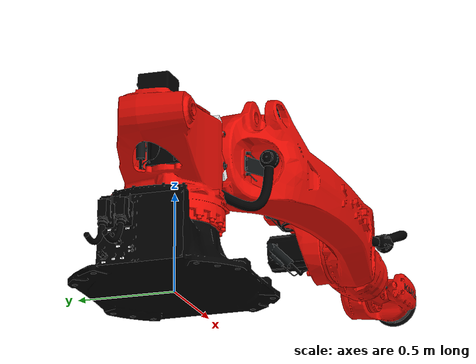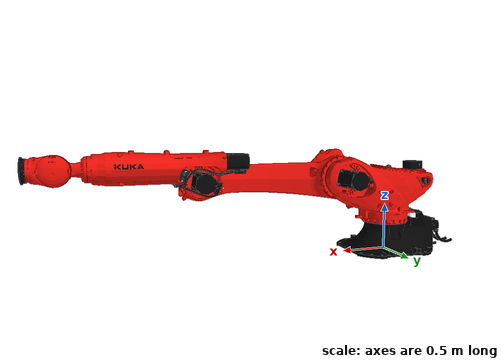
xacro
<?xml version="1.0" encoding="UTF-8"?>
<robot xmlns:xacro="http://www.ros.org/wiki/xacro" name="kr340_r3400_2">
  <!-- Import urdf files  -->
  <xacro:include filename="$(find kuka_fortec_support)/urdf/kr340_r3400_2_macro.xacro"/>
  <xacro:include filename="$(find kuka_fortec_support)/urdf/kr_fortec_ros2_control_macro.xacro"/>
  <!-- Basic arguments  -->
  <xacro:arg name="prefix" default=""/>
  <xacro:arg name="x" default="0"/>
  <xacro:arg name="y" default="0"/>
  <xacro:arg name="z" default="0"/>
  <xacro:arg name="roll" default="0"/>
  <xacro:arg name="pitch" default="0"/>
  <xacro:arg name="yaw" default="0"/>
  <!-- kroshu-specific arguments -->
  <xacro:arg name="driver_version" default="rsi_only"/>
  <xacro:arg name="mode" default="hardware"/>
  <xacro:arg name="gpio_config" default=""/>
  <xacro:arg name="roundtrip_time" default="0"/>
  <xacro:arg name="client_ip" default="0.0.0.0"/>
  <xacro:arg name="client_port" default="59152"/>
  <xacro:arg name="mxa_client_port" default="1337"/>
  <xacro:arg name="controller_ip" default="0.0.0.0"/>
  <xacro:arg name="verify_robot_model" default="true"/>
  <xacro:arg name="rsi_xml_config_file" default=""/>
  <xacro:kuka_fortec_ros2_control name="$(arg prefix)kr340_r3400_2" driver_version="$(arg driver_version)" client_ip="$(arg client_ip)" client_port="$(arg client_port)" mxa_client_port="$(arg mxa_client_port)" controller_ip="$(arg controller_ip)" prefix="$(arg prefix)" mode="$(arg mode)" gpio_config="$(arg gpio_config)" roundtrip_time="$(arg roundtrip_time)" verify_robot_model="$(arg verify_robot_model)" rsi_xml_config_file="$(arg rsi_xml_config_file)">
    <ext_axes_ros2_control_joints/>
  </xacro:kuka_fortec_ros2_control>
  <!-- world link -->
  <link name="world"/>
  <!-- robot links, joints -->
  <xacro:kuka_kr340_r3400_2_robot prefix="$(arg prefix)" package_name="kuka_fortec_support"/>
  <!-- default world - base_link joint -->
  <joint name="$(arg prefix)world-base_link" type="fixed">
    <parent link="world"/>
    <child link="$(arg prefix)base_link"/>
    <origin xyz="$(arg x) $(arg y) $(arg z)" rpy="$(arg roll) $(arg pitch) $(arg yaw)"/>
  </joint>
</robot>

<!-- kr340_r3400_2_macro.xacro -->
<robot xmlns:xacro="http://www.ros.org/wiki/xacro" name="kr340_r3400_2">
  <xacro:macro name="kuka_kr340_r3400_2_robot" params="prefix package_name">
    <link name="${prefix}base"/>
    <link name="${prefix}base_link">
      <collision>
        <geometry>
          <mesh filename="package://${package_name}/meshes/kr340_r3400_2/collision/base_link.stl"/>
        </geometry>
        <origin rpy="0.0 0.0 0.0" xyz="0.0 0.0 0.0"/>
      </collision>
      <inertial>
        <inertia ixx="21.993080767663656" ixy="0.0" ixz="0.0" iyy="21.541851292527777" iyz="0.0" izz="29.235292486917146"/>
        <mass value="315.2"/>
        <origin rpy="-0.11123527683716301 -0.0002994546457743646 -1.5305254859363833" xyz="-0.029666878172588826 0.0007581535532994961 0.22417449873096443"/>
      </inertial>
      <visual>
        <geometry>
          <mesh filename="package://${package_name}/meshes/kr340_r3400_2/visual/base_link.dae"/>
        </geometry>
        <origin rpy="0.0 0.0 0.0" xyz="0.0 0.0 0.0"/>
      </visual>
    </link>
    <link name="${prefix}flange"/>
    <link name="${prefix}link_1">
      <collision>
        <geometry>
          <mesh filename="package://${package_name}/meshes/kr340_r3400_2/collision/link_1.stl"/>
        </geometry>
        <origin rpy="-3.141592653589793 0.0 -0.0" xyz="0.0 -4.46506222969125e-17 0.36460000000000004"/>
      </collision>
      <inertial>
        <inertia ixx="27.7130089870907" ixy="0.0" ixz="0.0" iyy="81.8479857219255" iyz="0.0" izz="86.9939064739419"/>
        <mass value="587.48"/>
        <origin rpy="-2.0347970267963564 -0.13368764809364475 3.021441912487087" xyz="0.136871076462177 0.0185058623272282 -0.331140280520188"/>
      </inertial>
      <visual>
        <geometry>
          <mesh filename="package://${package_name}/meshes/kr340_r3400_2/visual/link_1.dae"/>
        </geometry>
        <origin rpy="-3.141592653589793 0.0 -0.0" xyz="0.0 -4.46506222969125e-17 0.36460000000000004"/>
      </visual>
    </link>
    <link name="${prefix}link_2">
      <collision>
        <geometry>
          <mesh filename="package://${package_name}/meshes/kr340_r3400_2/collision/link_2.stl"/>
        </geometry>
        <origin rpy="1.5707963267948968 -0.0 1.5707963267948966" xyz="-0.8 -0.49999999999999994 0.0755000000000001"/>
      </collision>
      <inertial>
        <inertia ixx="152.792309534777" ixy="0.0" ixz="0.0" iyy="10.2832890346502" iyz="0.0" izz="156.055586011328"/>
        <mass value="354.4"/>
        <origin rpy="0.06437706656900948 -0.18866530207812113 1.5815493728921215" xyz="0.701321867945824 -0.0174166196388262 -0.177177878103837"/>
      </inertial>
      <visual>
        <geometry>
          <mesh filename="package://${package_name}/meshes/kr340_r3400_2/visual/link_2.dae"/>
        </geometry>
        <origin rpy="1.5707963267948968 -0.0 1.5707963267948966" xyz="-0.8 -0.49999999999999994 0.0755000000000001"/>
      </visual>
    </link>
    <link name="${prefix}link_3">
      <collision>
        <geometry>
          <mesh filename="package://${package_name}/meshes/kr340_r3400_2/collision/link_3.stl"/>
        </geometry>
        <origin rpy="1.5707963267948968 -0.0 -0.0" xyz="-0.5000000000000001 2.35 0.1928000000000001"/>
      </collision>
      <inertial>
        <inertia ixx="52.3998022316228" ixy="0.0" ixz="0.0" iyy="7.69257016282338" iyz="0.0" izz="54.8124418086031"/>
        <mass value="308.92"/>
        <origin rpy="3.0491301695129094 0.6954214983795581 1.4379737602716787" xyz="0.21309809659458798 -0.0918346659329276 0.139021656092192"/>
      </inertial>
      <visual>
        <geometry>
          <mesh filename="package://${package_name}/meshes/kr340_r3400_2/visual/link_3.dae"/>
        </geometry>
        <origin rpy="1.5707963267948968 -0.0 -0.0" xyz="-0.5000000000000001 2.35 0.1928000000000001"/>
      </visual>
    </link>
    <link name="${prefix}link_4">
      <collision>
        <geometry>
          <mesh filename="package://${package_name}/meshes/kr340_r3400_2/collision/link_4.stl"/>
        </geometry>
        <origin rpy="1.8369701987210297e-16 1.5707963267948966 0.0" xyz="-2.5 -6.6211628352038695e-18 1.5241999999999998"/>
      </collision>
      <inertial>
        <inertia ixx="0.588262129245409" ixy="0.0" ixz="0.0" iyy="2.44610799395353" iyz="0.0" izz="2.52339712263877"/>
        <mass value="91.737"/>
        <origin rpy="1.5710798504855987 -1.2812030543896167 -1.5707871244530578" xyz="-3.84326934605306e-07 0.0412027304141186 -0.18393176853396098"/>
      </inertial>
      <visual>
        <geometry>
          <mesh filename="package://${package_name}/meshes/kr340_r3400_2/visual/link_4.dae"/>
        </geometry>
        <origin rpy="1.8369701987210297e-16 1.5707963267948966 0.0" xyz="-2.5 -6.6211628352038695e-18 1.5241999999999998"/>
      </visual>
    </link>
    <link name="${prefix}link_5">
      <collision>
        <geometry>
          <mesh filename="package://${package_name}/meshes/kr340_r3400_2/collision/link_5.stl"/>
        </geometry>
        <origin rpy="1.5707963267948968 -3.749399456654644e-33 -6.123233995736766e-17" xyz="-1.8419999999999999 2.5 -0.11930000000000004"/>
      </collision>
      <inertial>
        <inertia ixx="0.633268889418767" ixy="0.0" ixz="0.0" iyy="0.845638406192095" iyz="0.0" izz="0.966026834855894"/>
        <mass value="46.6909"/>
        <origin rpy="-1.5743136711698116 -0.8681547114390599 3.13883790122881" xyz="0.0685714603997781 6.6639030303550805e-06 -0.0959552886339736"/>
      </inertial>
      <visual>
        <geometry>
          <mesh filename="package://${package_name}/meshes/kr340_r3400_2/visual/link_5.dae"/>
        </geometry>
        <origin rpy="1.5707963267948968 -3.749399456654644e-33 -6.123233995736766e-17" xyz="-1.8419999999999999 2.5 -0.11930000000000004"/>
      </visual>
    </link>
    <link name="${prefix}link_6">
      <collision>
        <geometry>
          <mesh filename="package://${package_name}/meshes/kr340_r3400_2/collision/link_6.stl"/>
        </geometry>
        <origin rpy="1.2246467991473532e-16 1.5707963267948966 0.0" xyz="-2.5000000000000004 -1.6397095091069735e-16 2.0471999999999997"/>
      </collision>
      <inertial>
        <inertia ixx="0.101067049553456" ixy="0.0" ixz="0.0" iyy="0.101104653019609" iyz="0.0" izz="0.132839401205687"/>
        <mass value="23.3927"/>
        <origin rpy="0.002056178833581877 6.239270510690617e-05 -0.004602704125718316" xyz="5.29780658068543e-06 -7.16762066798617e-05 -0.023615065041658303"/>
      </inertial>
      <visual>
        <geometry>
          <mesh filename="package://${package_name}/meshes/kr340_r3400_2/visual/link_6.dae"/>
        </geometry>
        <origin rpy="1.2246467991473532e-16 1.5707963267948966 0.0" xyz="-2.5000000000000004 -1.6397095091069735e-16 2.0471999999999997"/>
      </visual>
    </link>
    <link name="${prefix}tool0"/>
    <joint name="${prefix}base_link-base" type="fixed">
      <child link="${prefix}base"/>
      <origin rpy="0.0 0.0 0.0" xyz="0.0 0.0 0.0"/>
      <parent link="${prefix}base_link"/>
    </joint>
    <joint name="${prefix}joint_1" type="revolute">
      <axis xyz="0.0 0.0 1.0"/>
      <child link="${prefix}link_1"/>
      <limit effort="14280.0" lower="-3.2288591161895095" upper="3.2288591161895095" velocity="1.74532925199433"/>
      <origin rpy="3.141592653589793 0.0 0.0" xyz="0.0 0.0 0.36460000000000004"/>
      <parent link="${prefix}base_link"/>
    </joint>
    <joint name="${prefix}joint_2" type="revolute">
      <axis xyz="0.0 0.0 1.0"/>
      <child link="${prefix}link_2"/>
      <limit effort="15444.0" lower="-2.2689280275926285" upper="0.08726646259971647" velocity="1.38831658329915"/>
      <origin rpy="1.5707963267948966 0.0 0.0" xyz="0.5 0.0755 -0.43539999999999995"/>
      <parent link="${prefix}link_1"/>
    </joint>
    <joint name="${prefix}joint_3" type="revolute">
      <axis xyz="0.0 0.0 1.0"/>
      <child link="${prefix}link_3"/>
      <limit effort="12927.2523523419" lower="-1.9198621771937625" upper="2.827433388230814" velocity="1.5707963267949"/>
      <origin rpy="0.0 0.0 0.0" xyz="1.55 0.0 -0.1173"/>
      <parent link="${prefix}link_2"/>
    </joint>
    <joint name="${prefix}joint_4" type="revolute">
      <axis xyz="0.0 0.0 1.0"/>
      <child link="${prefix}link_4"/>
      <limit effort="5573.36560490373" lower="-6.1086523819801535" upper="6.1086523819801535" velocity="1.5707963267949"/>
      <origin rpy="1.5707963267948966 0.0 -1.5707963267948966" xyz="1.0242 -0.15 0.1928"/>
      <parent link="${prefix}link_3"/>
    </joint>
    <joint name="${prefix}joint_5" type="revolute">
      <axis xyz="0.0 0.0 1.0"/>
      <child link="${prefix}link_5"/>
      <limit effort="4334.98599514317" lower="-2.0943951023931953" upper="2.0943951023931953" velocity="1.74532925199433"/>
      <origin rpy="0.0 1.5707963267948966 1.5707963267948966" xyz="0.0 0.1193 -0.3178"/>
      <parent link="${prefix}link_4"/>
    </joint>
    <joint name="${prefix}joint_6" type="revolute">
      <axis xyz="0.0 0.0 1.0"/>
      <child link="${prefix}link_6"/>
      <limit effort="3222.52224322019" lower="-6.1086523819801535" upper="6.1086523819801535" velocity="2.84488668075076"/>
      <origin rpy="1.5707963267948966 0.0 -1.5707963267948966" xyz="0.2052 0.0 -0.1193"/>
      <parent link="${prefix}link_5"/>
    </joint>
    <joint name="${prefix}link_6-flange" type="fixed">
      <child link="${prefix}flange"/>
      <origin rpy="0.0 1.5707963267948966 0.0" xyz="0.0 0.0 -0.0808"/>
      <parent link="${prefix}link_6"/>
    </joint>
    <joint name="${prefix}link_6-tool0" type="fixed">
      <child link="${prefix}tool0"/>
      <origin rpy="3.141592653589793 0.0 3.141592653589793" xyz="0.0 0.0 -0.0808"/>
      <parent link="${prefix}link_6"/>
    </joint>
  </xacro:macro>
</robot>
